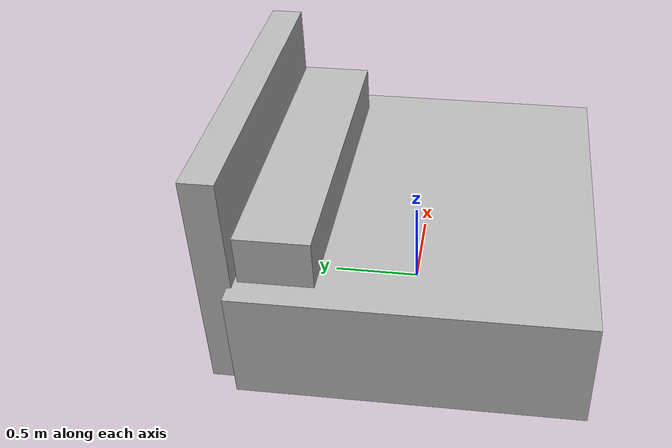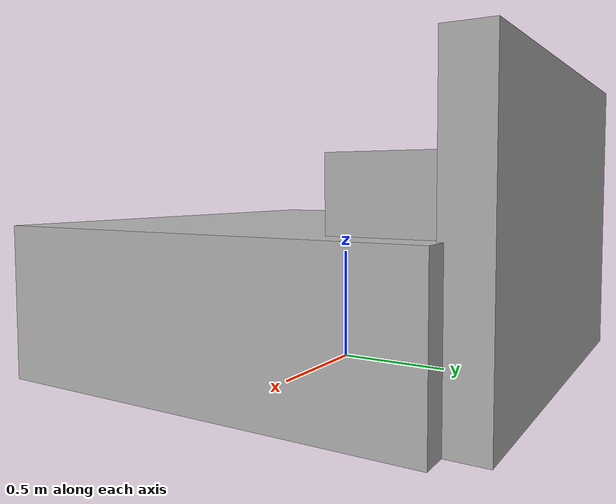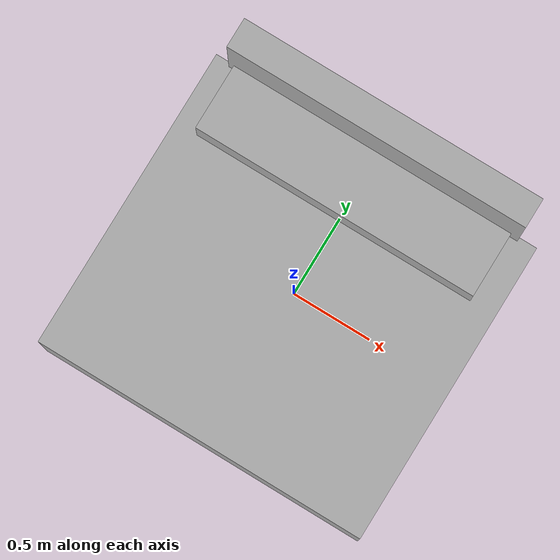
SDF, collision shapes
<?xml version="1.0" ?>
<sdf version="1.6">
  <model name="aws_robomaker_residential_Bed_01">
    <link name="link">
      <inertial>
        <mass>22.6</mass>
      </inertial>
      <collision name="aws_bed_01_collision_collider_box">
        <pose>0.005591 -0.075606 0.324091 0.0 -0.0 0.0</pose>
        <geometry>
          <box>
            <size>2.050563 1.853365 0.648183</size>
          </box>
        </geometry>
      </collision>
      <collision name="aws_bed_01_collision_collider_box.001">
        <pose>-0.003333 0.917788 0.640885 0.0 -0.0 0.0</pose>
        <geometry>
          <box>
            <size>1.845799 0.179581 1.281771</size>
          </box>
        </geometry>
      </collision>
      <collision name="aws_bed_01_collision_collider_box.002">
        <pose>-0.003389 0.611949 0.760816 0.0 -0.0 0.0</pose>
        <geometry>
          <box>
            <size>1.747482 0.395479 0.326568</size>
          </box>
        </geometry>
      </collision>
      <visual name="visual">
        <geometry>
          <mesh>
            <uri>model://aws_robomaker_residential_Bed_01/meshes/aws_Bed_01_visual.DAE</uri>
          </mesh>
        </geometry>
        <meta> <layer> 1 </layer></meta>
      </visual>
    </link>
  <static>1</static>
  </model>
</sdf>
